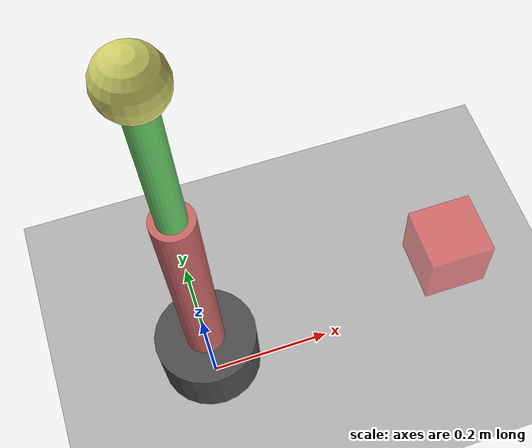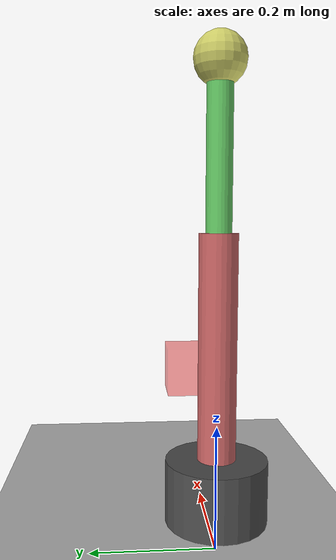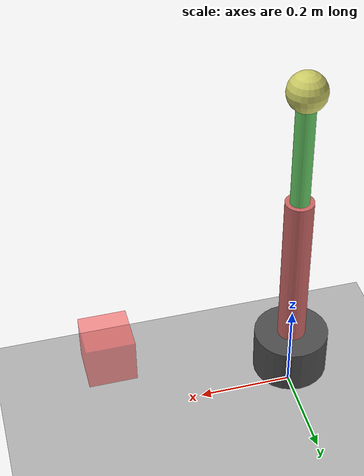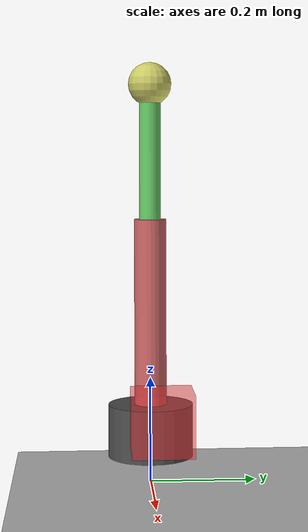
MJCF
<mujoco>
                <option gravity="0 0 -9.81" timestep="0.01"/>
                <default>
                    <joint damping="0.3"/>
                    <geom rgba="0.6 0.6 0.8 1"/>
                </default>
                <worldbody>
                    <!-- 基座 -->
                    <body name="base" pos="0 0 0.1">
                        <geom name="base_geom" type="cylinder" size="0.08 0.05"
                              mass="0.8" rgba="0.3 0.3 0.3 1"/>

                        <!-- 第一关节和连杆 -->
                        <body name="link1" pos="0 0 0.05">
                            <joint name="joint1" type="hinge" axis="0 0 1" range="-3.14 3.14"/>
                            <geom name="link1_geom" type="cylinder" size="0.03 0.175"
                                  pos="0 0 0.175" mass="0.3" rgba="0.8 0.4 0.4 1"/>

                            <!-- 第二关节和连杆 -->
                            <body name="link2" pos="0 0 0.35">
                                <joint name="joint2" type="hinge" axis="0 1 0" range="-1.57 1.57"/>
                                <geom name="link2_geom" type="cylinder" size="0.02 0.125"
                                      pos="0 0 0.125" mass="0.2" rgba="0.4 0.8 0.4 1"/>

                                <!-- 末端执行器 -->
                                <body name="end_effector" pos="0 0 0.25">
                                    <geom name="ee_geom" type="sphere" size="0.04"
                                          mass="0.05" rgba="0.8 0.8 0.4 1"/>
                                </body>
                            </body>
                        </body>
                    </body>

                    <!-- 地面 -->
                    <geom name="ground" type="plane" size="2 2 0.1" rgba="0.7 0.7 0.7 1"/>

                    <!-- 目标物体（可选） -->
                    <body name="target" pos="0.4 0.0 0.2">
                        <geom name="target_geom" type="box" size="0.05 0.05 0.05"
                              rgba="1.0 0.2 0.2 0.5"/>
                    </body>
                </worldbody>

                <actuator>
                    <position joint="joint1" kp="100"/>
                    <position joint="joint2" kp="100"/>
                </actuator>
            </mujoco>
